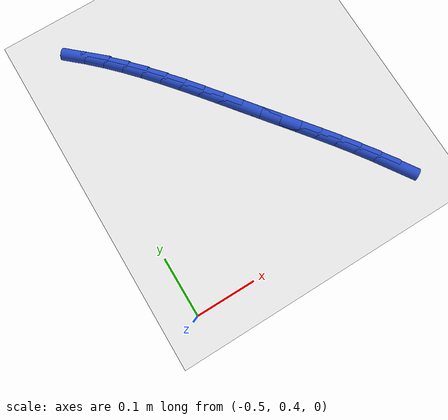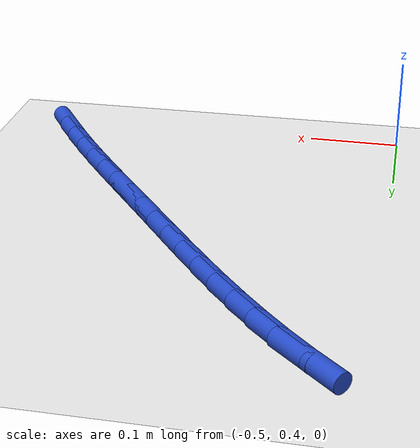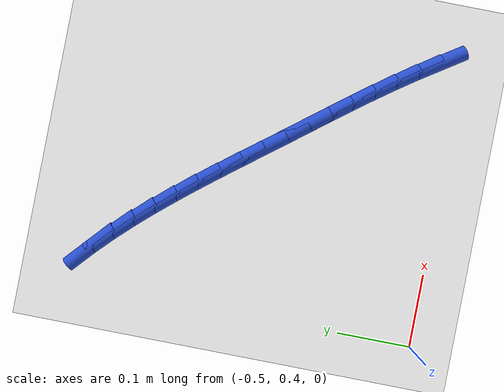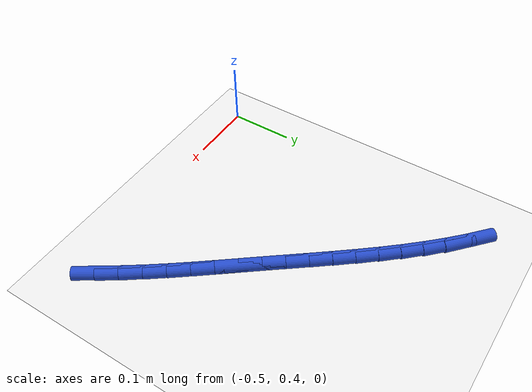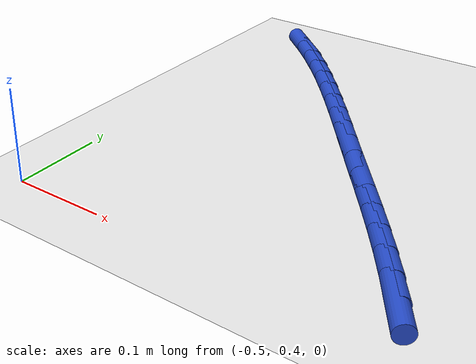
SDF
<sdf version="1.6">
 <world name="default">
  <model name="ground_plane">
   <static>1</static>
   <link name="link">
    <collision name="collision">
     <geometry><plane><normal>0 0 1</normal><size>100 100</size></plane></geometry>
     <surface><friction><ode><mu>100</mu><mu2>50</mu2></ode></friction></surface>
    </collision>
    <visual name="visual">
     <cast_shadows>0</cast_shadows>
     <geometry><plane><normal>0 0 1</normal><size>100 100</size></plane></geometry>
     <material>
      <script><uri>file://media/materials/scripts/gazebo.material</uri><name>Gazebo/WhiteGlow</name></script>
     </material>
    </visual>
   </link>
  </model>
  <model name="line">
   <link name="link_14">
    <pose>-0.1161818658963633 0.43755641100381526 0.01 0 1.57 -0.9850277895602266</pose>
    <collision name="collision">
     <geometry><cylinder><radius>0.01</radius><length>0.08</length></cylinder></geometry>
    </collision>
    <visual name="visual">
     <material>
      <script><name>Gazebo/Blue</name><uri>file://media/materials/scripts/gazebo.material</uri></script>
     </material>
     <geometry><cylinder><radius>0.01</radius><length>0.08</length></cylinder></geometry>
    </visual>
   </link>
   <link name="link_15">
    <pose>-0.134359695481094 0.464955583430125 0.01 0 1.57 -0.9588840580511969</pose>
    <collision name="collision">
     <geometry><cylinder><radius>0.01</radius><length>0.08</length></cylinder></geometry>
    </collision>
    <visual name="visual">
     <material>
      <script><name>Gazebo/Blue</name><uri>file://media/materials/scripts/gazebo.material</uri></script>
     </material>
     <geometry><cylinder><radius>0.01</radius><length>0.08</length></cylinder></geometry>
    </visual>
   </link>
   <link name="link_16">
    <pose>-0.15333475108848643 0.4919944721440762 0.01 0 1.57 -0.9380864949233623</pose>
    <collision name="collision">
     <geometry><cylinder><radius>0.01</radius><length>0.08</length></cylinder></geometry>
    </collision>
    <visual name="visual">
     <material>
      <script><name>Gazebo/Blue</name><uri>file://media/materials/scripts/gazebo.material</uri></script>
     </material>
     <geometry><cylinder><radius>0.01</radius><length>0.08</length></cylinder></geometry>
    </visual>
   </link>
   <link name="link_17">
    <pose>-0.17294673832086693 0.5187402785310158 0.01 0 1.57 -0.9225177211802233</pose>
    <collision name="collision">
     <geometry><cylinder><radius>0.01</radius><length>0.08</length></cylinder></geometry>
    </collision>
    <visual name="visual">
     <material>
      <script><name>Gazebo/Blue</name><uri>file://media/materials/scripts/gazebo.material</uri></script>
     </material>
     <geometry><cylinder><radius>0.01</radius><length>0.08</length></cylinder></geometry>
    </visual>
   </link>
   <link name="link_18">
    <pose>-0.19303536278056205 0.5452602039762905 0.01 0 1.57 -0.9120789843671948</pose>
    <collision name="collision">
     <geometry><cylinder><radius>0.01</radius><length>0.08</length></cylinder></geometry>
    </collision>
    <visual name="visual">
     <material>
      <script><name>Gazebo/Blue</name><uri>file://media/materials/scripts/gazebo.material</uri></script>
     </material>
     <geometry><cylinder><radius>0.01</radius><length>0.08</length></cylinder></geometry>
    </visual>
   </link>
   <link name="link_19">
    <pose>-0.21344033006989852 0.5716214498652478 0.01 0 1.57 -0.9067013673730009</pose>
    <collision name="collision">
     <geometry><cylinder><radius>0.01</radius><length>0.08</length></cylinder></geometry>
    </collision>
    <visual name="visual">
     <material>
      <script><name>Gazebo/Blue</name><uri>file://media/materials/scripts/gazebo.material</uri></script>
     </material>
     <geometry><cylinder><radius>0.01</radius><length>0.08</length></cylinder></geometry>
    </visual>
   </link>
   <link name="link_20">
    <pose>-0.23400134579120274 0.5978912175832344 0.01 0 1.57 -0.9063528339569071</pose>
    <collision name="collision">
     <geometry><cylinder><radius>0.01</radius><length>0.08</length></cylinder></geometry>
    </collision>
    <visual name="visual">
     <material>
      <script><name>Gazebo/Blue</name><uri>file://media/materials/scripts/gazebo.material</uri></script>
     </material>
     <geometry><cylinder><radius>0.01</radius><length>0.08</length></cylinder></geometry>
    </visual>
   </link>
   <link name="link_21">
    <pose>-0.25455811554680136 0.6241367085155975 0.01 0 1.57 -0.90967437598894</pose>
    <collision name="collision">
     <geometry><cylinder><radius>0.01</radius><length>0.08</length></cylinder></geometry>
    </collision>
    <visual name="visual">
     <material>
      <script><name>Gazebo/Blue</name><uri>file://media/materials/scripts/gazebo.material</uri></script>
     </material>
     <geometry><cylinder><radius>0.01</radius><length>0.08</length></cylinder></geometry>
    </visual>
   </link>
   <link name="link_22">
    <pose>-0.2749888605382059 0.6504005393528542 0.01 0 1.57 -0.9100517620196373</pose>
    <collision name="collision">
     <geometry><cylinder><radius>0.01</radius><length>0.08</length></cylinder></geometry>
    </collision>
    <visual name="visual">
     <material>
      <script><name>Gazebo/Blue</name><uri>file://media/materials/scripts/gazebo.material</uri></script>
     </material>
     <geometry><cylinder><radius>0.01</radius><length>0.08</length></cylinder></geometry>
    </visual>
   </link>
   <link name="link_23">
    <pose>-0.2953584674703887 0.6766061772841523 0.01 0 1.57 -0.9054481592668284</pose>
    <collision name="collision">
     <geometry><cylinder><radius>0.01</radius><length>0.08</length></cylinder></geometry>
    </collision>
    <visual name="visual">
     <material>
      <script><name>Gazebo/Blue</name><uri>file://media/materials/scripts/gazebo.material</uri></script>
     </material>
     <geometry><cylinder><radius>0.01</radius><length>0.08</length></cylinder></geometry>
    </visual>
   </link>
   <link name="link_24">
    <pose>-0.3157882947583612 0.7026410433306656 0.01 0 1.57 -0.895813618350035</pose>
    <collision name="collision">
     <geometry><cylinder><radius>0.01</radius><length>0.08</length></cylinder></geometry>
    </collision>
    <visual name="visual">
     <material>
      <script><name>Gazebo/Blue</name><uri>file://media/materials/scripts/gazebo.material</uri></script>
     </material>
     <geometry><cylinder><radius>0.01</radius><length>0.08</length></cylinder></geometry>
    </visual>
   </link>
   <link name="link_25">
    <pose>-0.3363997130292456 0.7283925507185185 0.01 0 1.57 -0.8810891884011294</pose>
    <collision name="collision">
     <geometry><cylinder><radius>0.01</radius><length>0.08</length></cylinder></geometry>
    </collision>
    <visual name="visual">
     <material>
      <script><name>Gazebo/Blue</name><uri>file://media/materials/scripts/gazebo.material</uri></script>
     </material>
     <geometry><cylinder><radius>0.01</radius><length>0.08</length></cylinder></geometry>
    </visual>
   </link>
   <link name="link_26">
    <pose>-0.35731409291016397 0.7537481126738343 0.01 0 1.57 -0.8612136206077178</pose>
    <collision name="collision">
     <geometry><cylinder><radius>0.01</radius><length>0.08</length></cylinder></geometry>
    </collision>
    <visual name="visual">
     <material>
      <script><name>Gazebo/Blue</name><uri>file://media/materials/scripts/gazebo.material</uri></script>
     </material>
     <geometry><cylinder><radius>0.01</radius><length>0.08</length></cylinder></geometry>
    </visual>
   </link>
   <link name="link_27">
    <pose>-0.37865280502823895 0.7785951424227378 0.01 0 1.57 -0.8361348743832212</pose>
    <collision name="collision">
     <geometry><cylinder><radius>0.01</radius><length>0.08</length></cylinder></geometry>
    </collision>
    <visual name="visual">
     <material>
      <script><name>Gazebo/Blue</name><uri>file://media/materials/scripts/gazebo.material</uri></script>
     </material>
     <geometry><cylinder><radius>0.01</radius><length>0.08</length></cylinder></geometry>
    </visual>
   </link>
   <link name="link_28">
    <pose>-0.4005372200105929 0.802821053191353 0.01 0 1.57 -0.8058262743873813</pose>
    <collision name="collision">
     <geometry><cylinder><radius>0.01</radius><length>0.08</length></cylinder></geometry>
    </collision>
    <visual name="visual">
     <material>
      <script><name>Gazebo/Blue</name><uri>file://media/materials/scripts/gazebo.material</uri></script>
     </material>
     <geometry><cylinder><radius>0.01</radius><length>0.08</length></cylinder></geometry>
    </visual>
   </link>
   <link name="link_29">
    <pose>-0.42308870848434743 0.8263132582058028 0.01 0 1.57 -0.7703072714142016</pose>
    <collision name="collision">
     <geometry><cylinder><radius>0.01</radius><length>0.08</length></cylinder></geometry>
    </collision>
    <visual name="visual">
     <material>
      <script><name>Gazebo/Blue</name><uri>file://media/materials/scripts/gazebo.material</uri></script>
     </material>
     <geometry><cylinder><radius>0.01</radius><length>0.08</length></cylinder></geometry>
    </visual>
   </link>
   <link name="link_30">
    <pose>-0.44642864107662567 0.8489591706922126 0.01 0 1.57 -0.7299325000089637</pose>
    <collision name="collision">
     <geometry><cylinder><radius>0.01</radius><length>0.08</length></cylinder></geometry>
    </collision>
    <visual name="visual">
     <material>
      <script><name>Gazebo/Blue</name><uri>file://media/materials/scripts/gazebo.material</uri></script>
     </material>
     <geometry><cylinder><radius>0.01</radius><length>0.08</length></cylinder></geometry>
    </visual>
   </link>
  </model>
 </world>
</sdf>
